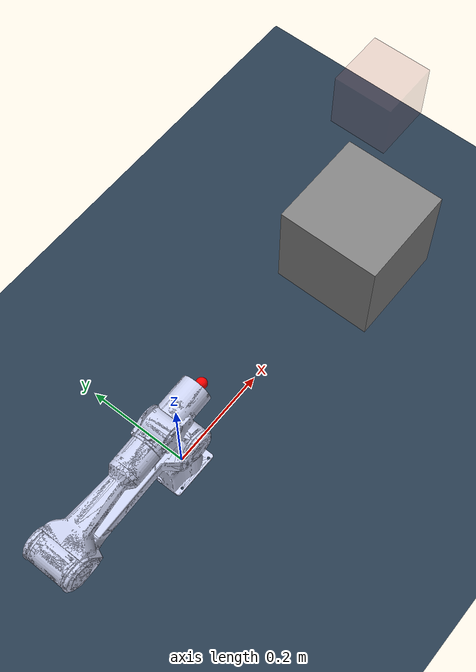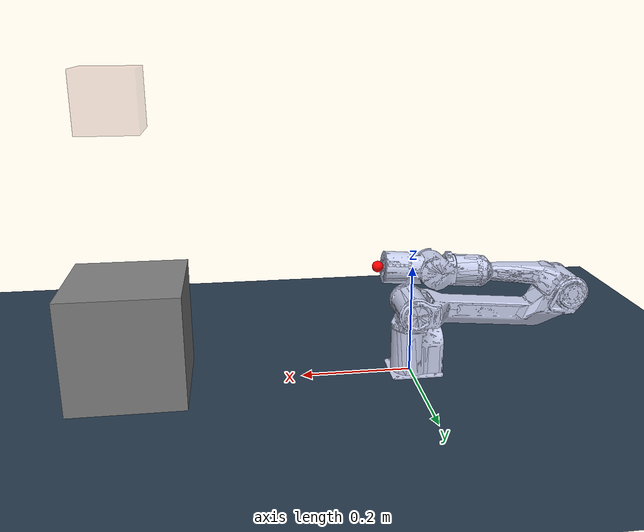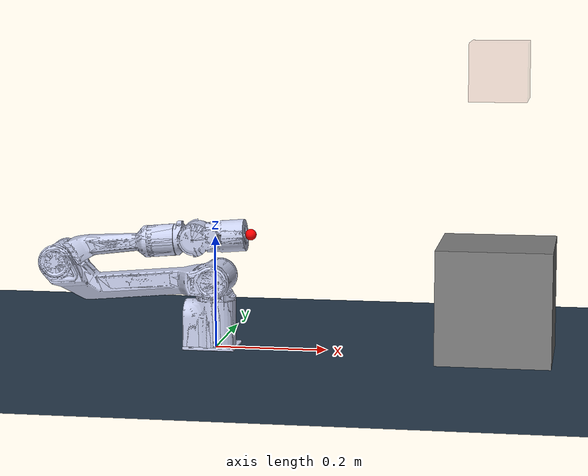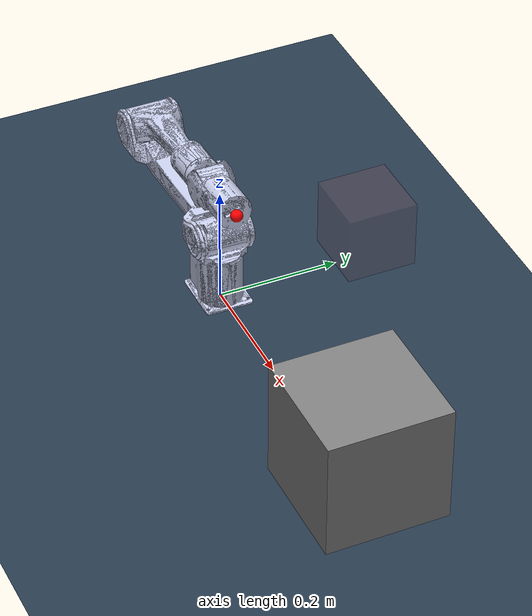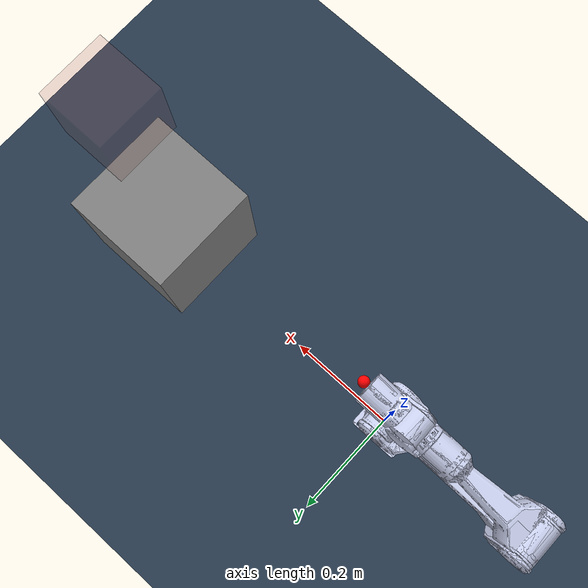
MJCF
<mujoco model="piper scene">
  <include file="piper_with_no_gripper.xml"/>

  <statistic center="0.3 0 0.3" extent="0.8" meansize="0.08"/>

  <visual>
    <headlight diffuse="0.6 0.6 0.6" ambient="0.1 0.1 0.1" specular="0 0 0"/>
    <global azimuth="120" elevation="-20"/>
  </visual>

  <asset>
    <texture name="grid" type="2d" builtin="checker" rgb1=".2 .3 .4" rgb2=".1 0.15 0.2" width="512" height="512"
      mark="cross" markrgb=".8 .8 .8"/>
    <material name="grid" texture="grid" texrepeat="1 1" texuniform="true"/>
  </asset>

  <worldbody>
    <light pos="0 0 1.5" directional="true"/>
    <geom name="floor" size="1 1 0.01" type="plane" material="grid"/>
    <body name="target" pos="0.5 0 .5" quat="0 1 0 0" mocap="true">
      <geom type="box" size=".05 .05 .05" contype="0" conaffinity="0" rgba=".6 .3 .3 .2"/>
    </body>
    <body name="wall" pos="0.5 0 0.1">
      <geom name="wall" type="box" size=".1 .1 .1"/>
    </body>
  </worldbody>

  <sensor>
    <fromto geom1="gripper_geom" geom2="wall" cutoff="1"/>
    <fromto geom1="gripper_geom" geom2="floor" cutoff="1"/>
  </sensor>
</mujoco>

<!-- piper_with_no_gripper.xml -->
<mujoco model="piper_description">
  <compiler angle="radian" meshdir="assets/" texturedir="assets/"/>

  <asset>
    <mesh name="base_link_col" file="base_link_col.STL"/>
    <mesh name="base_link" file="base_link.STL"/>
    <mesh name="link1_col" file="link1_col.STL"/>
    <mesh name="link1" file="link1.STL"/>
    <mesh name="link2_col" file="link2_col.STL"/>
    <mesh name="link2" file="link2.STL"/>
    <mesh name="link3_col" file="link3_col.STL"/>
    <mesh name="link3" file="link3.STL"/>
    <mesh name="link4_col" file="link4_col.STL"/>
    <mesh name="link4" file="link4.STL"/>
    <mesh name="link5_col" file="link5_col.STL"/>
    <mesh name="link5" file="link5.STL"/>
  </asset>

  <worldbody>
    <body name="base_link">
      <inertial pos="-0.00979275 1.82906e-06 0.04101" quat="0.692988 -0.137524 -0.137826 0.69416" mass="0.162549" diaginertia="0.000269445 0.000227478 0.000221437"/>
      <geom type="mesh" contype="0" conaffinity="0" group="1" density="0" rgba="0.792157 0.819608 0.933333 1" mesh="base_link_col"/>
      <geom type="mesh" rgba="0.792157 0.819608 0.933333 1" mesh="base_link"/>
      <body name="link1" pos="0 0 0.123" quat="0.707105 0 0 -0.707108">
        <inertial pos="0.00131676 0.000310289 -0.00922875" quat="0.557105 0.432155 0.377373 0.600388" mass="0.097868" diaginertia="9.25942e-05 8.3083e-05 7.69469e-05"/>
        <joint name="joint1" pos="0 0 0" axis="0 0 1" range="-2.618 2.618" actuatorfrcrange="-100 100"/>
        <geom type="mesh" contype="0" conaffinity="0" group="1" density="0" rgba="0.792157 0.819608 0.933333 1" mesh="link1_col"/>
        <geom type="mesh" rgba="0.792157 0.819608 0.933333 1" mesh="link1"/>
        <body name="link2" quat="0.499998 0.5 -0.500002 -0.5">
          <inertial pos="0.148794 -0.00242027 0.00175155" quat="-0.0249063 0.70684 0.00803509 0.706889" mass="0.290889" diaginertia="0.00177549 0.00173142 0.00014552"/>
          <joint name="joint2" pos="0 0 0" axis="0 0 1" range="0 3.14" actuatorfrcrange="-100 100"/>
          <geom type="mesh" contype="0" conaffinity="0" group="1" density="0" rgba="0.792157 0.819608 0.933333 1" mesh="link2_col"/>
          <geom type="mesh" rgba="0.792157 0.819608 0.933333 1" mesh="link2"/>
          <body name="link3" pos="0.28358 0.028726 0" quat="0.998726 0 0 0.0504536">
            <inertial pos="-0.0996835 0.0349477 0.000508026" quat="0.0777021 0.702287 -0.0990541 0.700674" mass="0.290848" diaginertia="0.000241946 0.000222224 0.000100384"/>
            <joint name="joint3" pos="0 0 0" axis="0 0 1" range="-2.697 0" actuatorfrcrange="-100 100"/>
            <geom type="mesh" contype="0" conaffinity="0" group="1" density="0" rgba="0.792157 0.819608 0.933333 1" mesh="link3_col"/>
            <geom type="mesh" rgba="0.792157 0.819608 0.933333 1" mesh="link3"/>
            <body name="link4" pos="-0.24221 0.068514 0" quat="0.544767 -0.544769 -0.450809 0.450808">
              <inertial pos="0.000276465 -0.00102804 -0.00472831" quat="0.492305 0.505285 0.503294 0.499017" mass="0.127087" diaginertia="4.87057e-05 4.10595e-05 3.82001e-05"/>
              <joint name="joint4" pos="0 0 0" axis="0 0 1" range="-1.832 1.832" actuatorfrcrange="-100 100"/>
              <geom type="mesh" contype="0" conaffinity="0" group="1" density="0" rgba="0.792157 0.819608 0.933333 1" mesh="link4_col"/>
              <geom type="mesh" rgba="0.792157 0.819608 0.933333 1" mesh="link4"/>
              <body name="link5" quat="0.707105 0.707108 0 0">
                <inertial pos="8.82262e-05 0.0566829 -0.0019612" quat="0.507447 0.490986 0.506887 0.494466" mass="0.144711" diaginertia="5.63237e-05 4.88652e-05 4.39642e-05"/>
                <joint name="joint5" pos="0 0 0" axis="0 0 1" range="-1.22 1.22" actuatorfrcrange="-100 100"/>
                <geom type="mesh" contype="0" conaffinity="0" group="1" density="0" rgba="0.792157 0.819608 0.933333 1" mesh="link5_col"/>
                <geom type="mesh" rgba="0.792157 0.819608 0.933333 1" mesh="link5" name="gripper_geom"/>
                <site name="attachment_site" size="0.01" pos="0 0.1 0" quat="-1 1 1 1" rgba="1 0 0 1" group="1"/>
              </body>
            </body>
          </body>
        </body>
      </body>
    </body>
  </worldbody>

  <actuator>
    <position name="joint1" joint="joint1" ctrlrange="-2.618 2.618"/>
    <position name="joint2" joint="joint2" ctrlrange="0 3.14"/>
    <position name="joint3" joint="joint3" ctrlrange="-2.697 0"/>
    <position name="joint4" joint="joint4" ctrlrange="-1.832 1.832"/>
    <position name="joint5" joint="joint5" ctrlrange="-1.22 1.22"/>
  </actuator>

  <keyframe>
    <key name="home" qpos="-1.47 1.11 -0.714 0.0778 1.22" ctrl="0 0 0 0 0"/>
  </keyframe>
</mujoco>
